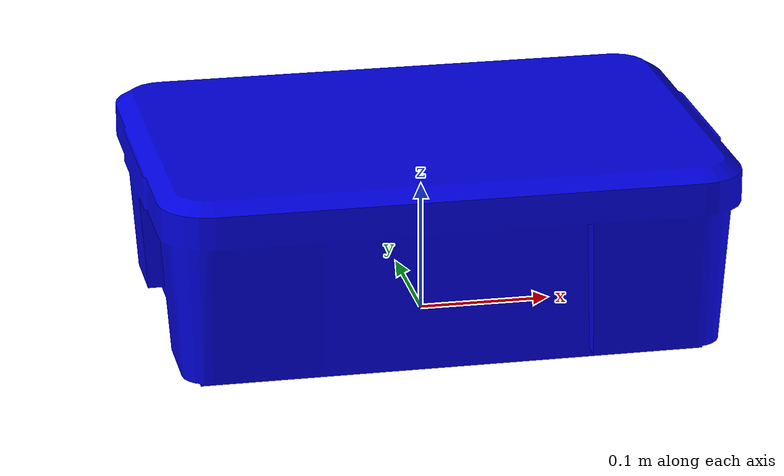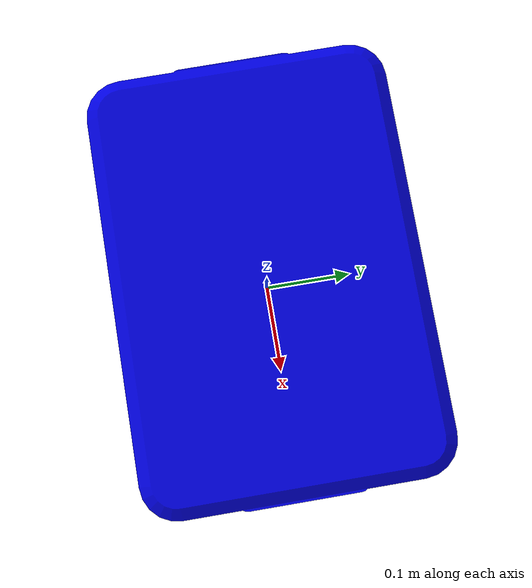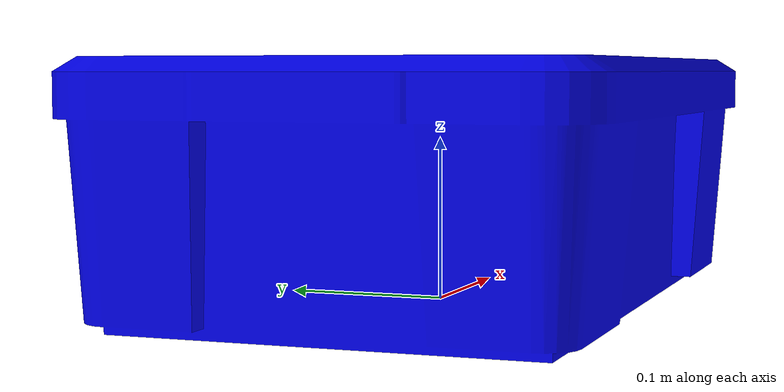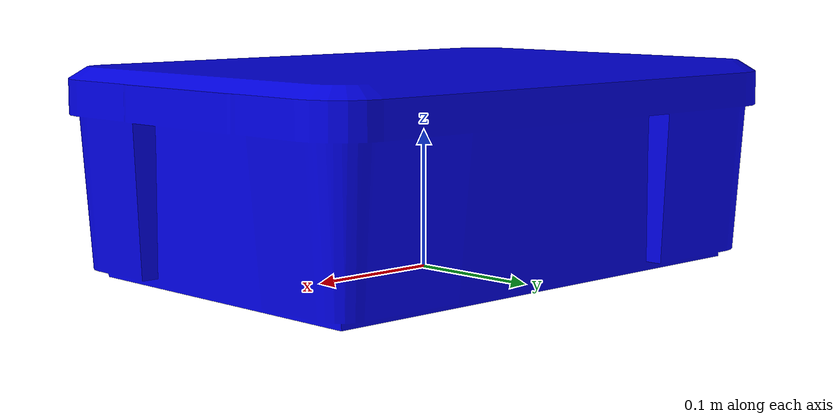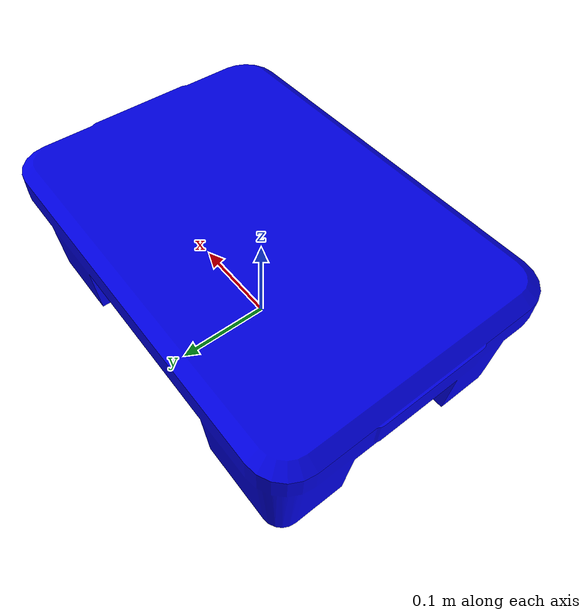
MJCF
<mujoco model="box_lid">
    <default>
        <default class="collision">
            <geom condim="3" group="0" rgba="0.266754 0.174546 0.0644028 1"/>
        </default>
        <default class="visual">
            <geom condim="3" group="1" conaffinity="0" contype="0"/>
        </default>
    </default>

    <asset>
        <mesh name="box_lid_mesh" file="@MODULE_INSTALL_LOCATION@/meshes/box_lid/box_lid.stl"/>
    </asset>

    <worldbody>
        <light mode="targetbodycom" target="base_link" directional="false" diffuse=".8 .8 .8" specular="0.3 0.3 0.3"
               pos="0 0 4.0" dir="0 0 -1"/>
        <body name="base_link">
            <joint name="root" type="free"/>
            <inertial
                    pos="1.7416e-09 1.6392e-09 0.077309"
                    mass="1.132"
                    fullinertia="0.009386 0.018142 0.023293 -1.7148e-11 -5.9928e-11 -5.6387e-11"/>

            <geom class="collision" type="mesh"
                  mesh="box_lid_mesh"
                  rgba="0.0 0.0 0.9 1"/>
            <geom class="visual" type="mesh"
                  mesh="box_lid_mesh"
                  rgba="0.0 0.0 0.9 1"/>
        </body>
    </worldbody>
</mujoco>
